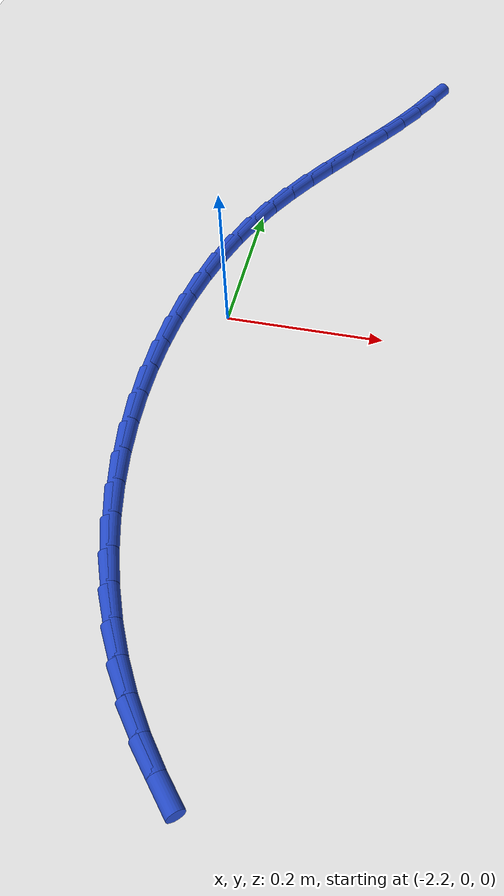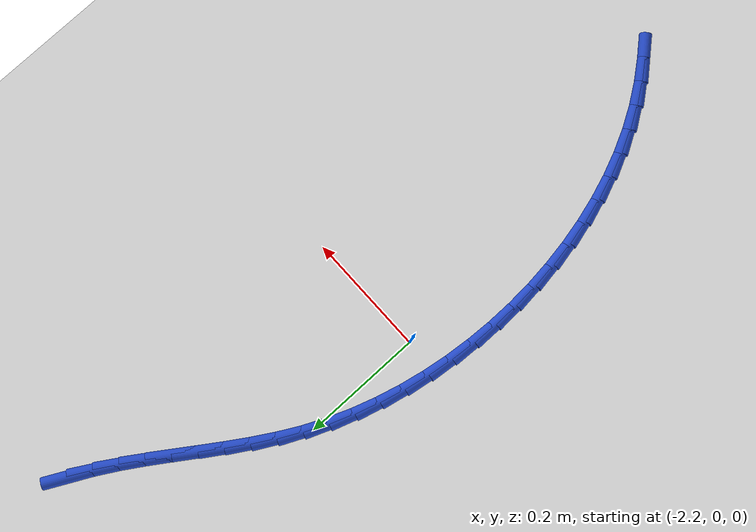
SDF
<sdf version="1.6">
 <world name="default">
  <model name="ground_plane">
   <static>1</static>
   <link name="link">
    <collision name="collision">
     <geometry><plane><normal>0 0 1</normal><size>100 100</size></plane></geometry>
     <surface><friction><ode><mu>100</mu><mu2>50</mu2></ode></friction></surface>
    </collision>
    <visual name="visual">
     <cast_shadows>0</cast_shadows>
     <geometry><plane><normal>0 0 1</normal><size>100 100</size></plane></geometry>
     <material>
      <script><uri>file://media/materials/scripts/gazebo.material</uri><name>Gazebo/WhiteGlow</name></script>
     </material>
    </visual>
   </link>
  </model>
  <model name="line">
   <link name="link_75">
    <pose>-2.002774802437328 0.5213961007887207 0.01 0 1.57 1.0997018250241077</pose>
    <collision name="collision">
     <geometry><cylinder><radius>0.01</radius><length>0.08</length></cylinder></geometry>
    </collision>
    <visual name="visual">
     <material>
      <script><name>Gazebo/Blue</name><uri>file://media/materials/scripts/gazebo.material</uri></script>
     </material>
     <geometry><cylinder><radius>0.01</radius><length>0.08</length></cylinder></geometry>
    </visual>
   </link>
   <link name="link_76">
    <pose>-2.021103936546798 0.48541030482460273 0.01 0 1.57 1.0477742499370155</pose>
    <collision name="collision">
     <geometry><cylinder><radius>0.01</radius><length>0.08</length></cylinder></geometry>
    </collision>
    <visual name="visual">
     <material>
      <script><name>Gazebo/Blue</name><uri>file://media/materials/scripts/gazebo.material</uri></script>
     </material>
     <geometry><cylinder><radius>0.01</radius><length>0.08</length></cylinder></geometry>
    </visual>
   </link>
   <link name="link_77">
    <pose>-2.0411564215048665 0.4506320788318388 0.01 0 1.57 1.009527364947297</pose>
    <collision name="collision">
     <geometry><cylinder><radius>0.01</radius><length>0.08</length></cylinder></geometry>
    </collision>
    <visual name="visual">
     <material>
      <script><name>Gazebo/Blue</name><uri>file://media/materials/scripts/gazebo.material</uri></script>
     </material>
     <geometry><cylinder><radius>0.01</radius><length>0.08</length></cylinder></geometry>
    </visual>
   </link>
   <link name="link_78">
    <pose>-2.0624705667182024 0.4167311537806217 0.01 0 1.57 0.9853264081306271</pose>
    <collision name="collision">
     <geometry><cylinder><radius>0.01</radius><length>0.08</length></cylinder></geometry>
    </collision>
    <visual name="visual">
     <material>
      <script><name>Gazebo/Blue</name><uri>file://media/materials/scripts/gazebo.material</uri></script>
     </material>
     <geometry><cylinder><radius>0.01</radius><length>0.08</length></cylinder></geometry>
    </visual>
   </link>
   <link name="link_79">
    <pose>-2.0845846815934754 0.38337726064114247 0.01 0 1.57 0.9752900531677008</pose>
    <collision name="collision">
     <geometry><cylinder><radius>0.01</radius><length>0.08</length></cylinder></geometry>
    </collision>
    <visual name="visual">
     <material>
      <script><name>Gazebo/Blue</name><uri>file://media/materials/scripts/gazebo.material</uri></script>
     </material>
     <geometry><cylinder><radius>0.01</radius><length>0.08</length></cylinder></geometry>
    </visual>
   </link>
   <link name="link_80">
    <pose>-2.1070370755373578 0.35024013038359314 0.01 0 1.57 0.9794305694555699</pose>
    <collision name="collision">
     <geometry><cylinder><radius>0.01</radius><length>0.08</length></cylinder></geometry>
    </collision>
    <visual name="visual">
     <material>
      <script><name>Gazebo/Blue</name><uri>file://media/materials/scripts/gazebo.material</uri></script>
     </material>
     <geometry><cylinder><radius>0.01</radius><length>0.08</length></cylinder></geometry>
    </visual>
   </link>
   <link name="link_81">
    <pose>-2.1293660579565152 0.31698949397816606 0.01 0 1.57 0.9977138819164583</pose>
    <collision name="collision">
     <geometry><cylinder><radius>0.01</radius><length>0.08</length></cylinder></geometry>
    </collision>
    <visual name="visual">
     <material>
      <script><name>Gazebo/Blue</name><uri>file://media/materials/scripts/gazebo.material</uri></script>
     </material>
     <geometry><cylinder><radius>0.01</radius><length>0.08</length></cylinder></geometry>
    </visual>
   </link>
   <link name="link_82">
    <pose>-2.151109938257622 0.283295082395053 0.01 0 1.57 1.0300352773880856</pose>
    <collision name="collision">
     <geometry><cylinder><radius>0.01</radius><length>0.08</length></cylinder></geometry>
    </collision>
    <visual name="visual">
     <material>
      <script><name>Gazebo/Blue</name><uri>file://media/materials/scripts/gazebo.material</uri></script>
     </material>
     <geometry><cylinder><radius>0.01</radius><length>0.08</length></cylinder></geometry>
    </visual>
   </link>
   <link name="link_83">
    <pose>-2.171807025847345 0.24882662660444552 0.01 0 1.57 1.0761135076919783</pose>
    <collision name="collision">
     <geometry><cylinder><radius>0.01</radius><length>0.08</length></cylinder></geometry>
    </collision>
    <visual name="visual">
     <material>
      <script><name>Gazebo/Blue</name><uri>file://media/materials/scripts/gazebo.material</uri></script>
     </material>
     <geometry><cylinder><radius>0.01</radius><length>0.08</length></cylinder></geometry>
    </visual>
   </link>
   <link name="link_84">
    <pose>-2.190995630132355 0.21325385757653603 0.01 0 1.57 1.1347386535883401</pose>
    <collision name="collision">
     <geometry><cylinder><radius>0.01</radius><length>0.08</length></cylinder></geometry>
    </collision>
    <visual name="visual">
     <material>
      <script><name>Gazebo/Blue</name><uri>file://media/materials/scripts/gazebo.material</uri></script>
     </material>
     <geometry><cylinder><radius>0.01</radius><length>0.08</length></cylinder></geometry>
    </visual>
   </link>
   <link name="link_85">
    <pose>-2.20823093047843 0.1762661186521343 0.01 0 1.57 1.196757983180371</pose>
    <collision name="collision">
     <geometry><cylinder><radius>0.01</radius><length>0.08</length></cylinder></geometry>
    </collision>
    <visual name="visual">
     <material>
      <script><name>Gazebo/Blue</name><uri>file://media/materials/scripts/gazebo.material</uri></script>
     </material>
     <geometry><cylinder><radius>0.01</radius><length>0.08</length></cylinder></geometry>
    </visual>
   </link>
   <link name="link_86">
    <pose>-2.22331424143409 0.13783890054178347 0.01 0 1.57 1.2560015107695213</pose>
    <collision name="collision">
     <geometry><cylinder><radius>0.01</radius><length>0.08</length></cylinder></geometry>
    </collision>
    <visual name="visual">
     <material>
      <script><name>Gazebo/Blue</name><uri>file://media/materials/scripts/gazebo.material</uri></script>
     </material>
     <geometry><cylinder><radius>0.01</radius><length>0.08</length></cylinder></geometry>
    </visual>
   </link>
   <link name="link_87">
    <pose>-2.2362331868539087 0.09816429004476702 0.01 0 1.57 1.3127877106966452</pose>
    <collision name="collision">
     <geometry><cylinder><radius>0.01</radius><length>0.08</length></cylinder></geometry>
    </collision>
    <visual name="visual">
     <material>
      <script><name>Gazebo/Blue</name><uri>file://media/materials/scripts/gazebo.material</uri></script>
     </material>
     <geometry><cylinder><radius>0.01</radius><length>0.08</length></cylinder></geometry>
    </visual>
   </link>
   <link name="link_88">
    <pose>-2.2469800037567786 0.057439737049145026 0.01 0 1.57 1.3675908581591225</pose>
    <collision name="collision">
     <geometry><cylinder><radius>0.01</radius><length>0.08</length></cylinder></geometry>
    </collision>
    <visual name="visual">
     <material>
      <script><name>Gazebo/Blue</name><uri>file://media/materials/scripts/gazebo.material</uri></script>
     </material>
     <geometry><cylinder><radius>0.01</radius><length>0.08</length></cylinder></geometry>
    </visual>
   </link>
   <link name="link_89">
    <pose>-2.2555469291615933 0.015862691442978756 0.01 0 1.57 1.4208770040597383</pose>
    <collision name="collision">
     <geometry><cylinder><radius>0.01</radius><length>0.08</length></cylinder></geometry>
    </collision>
    <visual name="visual">
     <material>
      <script><name>Gazebo/Blue</name><uri>file://media/materials/scripts/gazebo.material</uri></script>
     </material>
     <geometry><cylinder><radius>0.01</radius><length>0.08</length></cylinder></geometry>
    </visual>
   </link>
   <link name="link_90">
    <pose>-2.2619262000872453 -0.02636939688567163 0.01 0 1.57 1.4731021200910597</pose>
    <collision name="collision">
     <geometry><cylinder><radius>0.01</radius><length>0.08</length></cylinder></geometry>
    </collision>
    <visual name="visual">
     <material>
      <script><name>Gazebo/Blue</name><uri>file://media/materials/scripts/gazebo.material</uri></script>
     </material>
     <geometry><cylinder><radius>0.01</radius><length>0.08</length></cylinder></geometry>
    </visual>
   </link>
   <link name="link_91">
    <pose>-2.2661100535526284 -0.06905907804874584 0.01 0 1.57 1.5247130012874424</pose>
    <collision name="collision">
     <geometry><cylinder><radius>0.01</radius><length>0.08</length></cylinder></geometry>
    </collision>
    <visual name="visual">
     <material>
      <script><name>Gazebo/Blue</name><uri>file://media/materials/scripts/gazebo.material</uri></script>
     </material>
     <geometry><cylinder><radius>0.01</radius><length>0.08</length></cylinder></geometry>
    </visual>
   </link>
   <link name="link_92">
    <pose>-2.2680907265766335 -0.11200890215818404 0.01 0 1.57 -1.5654428108005716</pose>
    <collision name="collision">
     <geometry><cylinder><radius>0.01</radius><length>0.08</length></cylinder></geometry>
    </collision>
    <visual name="visual">
     <material>
      <script><name>Gazebo/Blue</name><uri>file://media/materials/scripts/gazebo.material</uri></script>
     </material>
     <geometry><cylinder><radius>0.01</radius><length>0.08</length></cylinder></geometry>
    </visual>
   </link>
   <link name="link_93">
    <pose>-2.2678604561781555 -0.15502141932592417 0.01 0 1.57 -1.513742996611289</pose>
    <collision name="collision">
     <geometry><cylinder><radius>0.01</radius><length>0.08</length></cylinder></geometry>
    </collision>
    <visual name="visual">
     <material>
      <script><name>Gazebo/Blue</name><uri>file://media/materials/scripts/gazebo.material</uri></script>
     </material>
     <geometry><cylinder><radius>0.01</radius><length>0.08</length></cylinder></geometry>
    </visual>
   </link>
   <link name="link_94">
    <pose>-2.2654114793760867 -0.19789917966390663 0.01 0 1.57 -1.461342808545094</pose>
    <collision name="collision">
     <geometry><cylinder><radius>0.01</radius><length>0.08</length></cylinder></geometry>
    </collision>
    <visual name="visual">
     <material>
      <script><name>Gazebo/Blue</name><uri>file://media/materials/scripts/gazebo.material</uri></script>
     </material>
     <geometry><cylinder><radius>0.01</radius><length>0.08</length></cylinder></geometry>
    </visual>
   </link>
   <link name="link_95">
    <pose>-2.2607360331893203 -0.24044473328407087 0.01 0 1.57 -1.4078013711453197</pose>
    <collision name="collision">
     <geometry><cylinder><radius>0.01</radius><length>0.08</length></cylinder></geometry>
    </collision>
    <visual name="visual">
     <material>
      <script><name>Gazebo/Blue</name><uri>file://media/materials/scripts/gazebo.material</uri></script>
     </material>
     <geometry><cylinder><radius>0.01</radius><length>0.08</length></cylinder></geometry>
    </visual>
   </link>
   <link name="link_96">
    <pose>-2.2538263546367476 -0.2824606302983564 0.01 0 1.57 -1.3526724298620056</pose>
    <collision name="collision">
     <geometry><cylinder><radius>0.01</radius><length>0.08</length></cylinder></geometry>
    </collision>
    <visual name="visual">
     <material>
      <script><name>Gazebo/Blue</name><uri>file://media/materials/scripts/gazebo.material</uri></script>
     </material>
     <geometry><cylinder><radius>0.01</radius><length>0.08</length></cylinder></geometry>
    </visual>
   </link>
   <link name="link_97">
    <pose>-2.2446746807372633 -0.3237494208187028 0.01 0 1.57 -1.2955044699338374</pose>
    <collision name="collision">
     <geometry><cylinder><radius>0.01</radius><length>0.08</length></cylinder></geometry>
    </collision>
    <visual name="visual">
     <material>
      <script><name>Gazebo/Blue</name><uri>file://media/materials/scripts/gazebo.material</uri></script>
     </material>
     <geometry><cylinder><radius>0.01</radius><length>0.08</length></cylinder></geometry>
    </visual>
   </link>
   <link name="link_98">
    <pose>-2.2332732485097595 -0.3641136549570504 0.01 0 1.57 -1.235843933882016</pose>
    <collision name="collision">
     <geometry><cylinder><radius>0.01</radius><length>0.08</length></cylinder></geometry>
    </collision>
    <visual name="visual">
     <material>
      <script><name>Gazebo/Blue</name><uri>file://media/materials/scripts/gazebo.material</uri></script>
     </material>
     <geometry><cylinder><radius>0.01</radius><length>0.08</length></cylinder></geometry>
    </visual>
   </link>
   <link name="link_99">
    <pose>-2.21961429497313 -0.4033558828253371 0.01 0 1.57 -1.1732428974885665</pose>
    <collision name="collision">
     <geometry><cylinder><radius>0.01</radius><length>0.08</length></cylinder></geometry>
    </collision>
    <visual name="visual">
     <material>
      <script><name>Gazebo/Blue</name><uri>file://media/materials/scripts/gazebo.material</uri></script>
     </material>
     <geometry><cylinder><radius>0.01</radius><length>0.08</length></cylinder></geometry>
    </visual>
   </link>
   <link name="link_100">
    <pose>-2.2036900571462663 -0.4412786545355032 0.01 0 1.57 -1.107272831513398</pose>
    <collision name="collision">
     <geometry><cylinder><radius>0.01</radius><length>0.08</length></cylinder></geometry>
    </collision>
    <visual name="visual">
     <material>
      <script><name>Gazebo/Blue</name><uri>file://media/materials/scripts/gazebo.material</uri></script>
     </material>
     <geometry><cylinder><radius>0.01</radius><length>0.08</length></cylinder></geometry>
    </visual>
   </link>
   <link name="link_101">
    <pose>-2.1854927720480624 -0.47768452019948826 0.01 0 1.57 -1.0375461842193756</pose>
    <collision name="collision">
     <geometry><cylinder><radius>0.01</radius><length>0.08</length></cylinder></geometry>
    </collision>
    <visual name="visual">
     <material>
      <script><name>Gazebo/Blue</name><uri>file://media/materials/scripts/gazebo.material</uri></script>
     </material>
     <geometry><cylinder><radius>0.01</radius><length>0.08</length></cylinder></geometry>
    </visual>
   </link>
   <link name="link_102">
    <pose>-2.165014676697411 -0.5123760299292319 0.01 0 1.57 -0.9638163096061111</pose>
    <collision name="collision">
     <geometry><cylinder><radius>0.01</radius><length>0.08</length></cylinder></geometry>
    </collision>
    <visual name="visual">
     <material>
      <script><name>Gazebo/Blue</name><uri>file://media/materials/scripts/gazebo.material</uri></script>
     </material>
     <geometry><cylinder><radius>0.01</radius><length>0.08</length></cylinder></geometry>
    </visual>
   </link>
   <link name="link_103">
    <pose>-2.142249682725304 -0.5451581563092984 0.01 0 1.57 -0.8935777648873438</pose>
    <collision name="collision">
     <geometry><cylinder><radius>0.01</radius><length>0.08</length></cylinder></geometry>
    </collision>
    <visual name="visual">
     <material>
      <script><name>Gazebo/Blue</name><uri>file://media/materials/scripts/gazebo.material</uri></script>
     </material>
     <geometry><cylinder><radius>0.01</radius><length>0.08</length></cylinder></geometry>
    </visual>
   </link>
   <link name="link_104">
    <pose>-2.1173724133612946 -0.5760972870307615 0.01 0 1.57 -0.841972257227343</pose>
    <collision name="collision">
     <geometry><cylinder><radius>0.01</radius><length>0.08</length></cylinder></geometry>
    </collision>
    <visual name="visual">
     <material>
      <script><name>Gazebo/Blue</name><uri>file://media/materials/scripts/gazebo.material</uri></script>
     </material>
     <geometry><cylinder><radius>0.01</radius><length>0.08</length></cylinder></geometry>
    </visual>
   </link>
  </model>
 </world>
</sdf>
